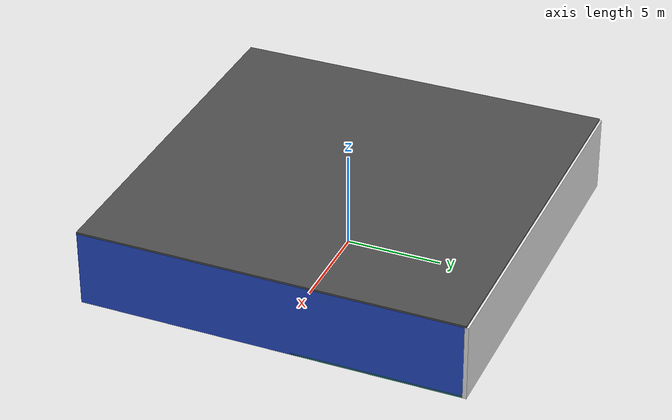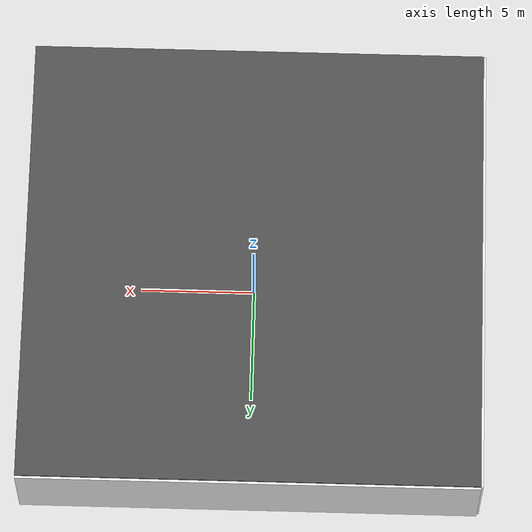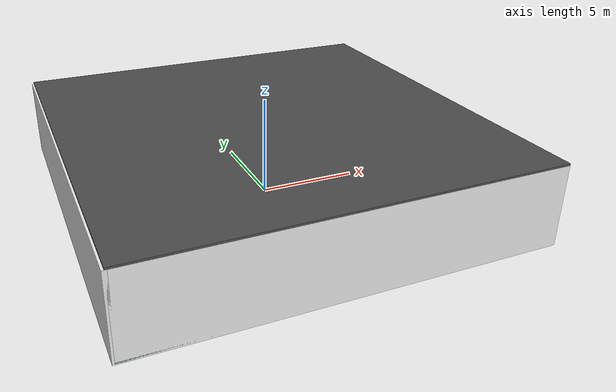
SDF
<sdf version="1.4">
 <world name="default">
  <physics type="ode">
   <max_step_size>0.001</max_step_size>
   <real_time_factor>1</real_time_factor>
   <real_time_update_rate>1000</real_time_update_rate>
   <gravity>0 0 -9.8</gravity>
  </physics>
  <scene><ambient>0.4 0.4 0.4 1</ambient><background>0.7 0.7 0.7 1</background><shadows>1</shadows></scene>
  <model name="Surrounding">
   <static>1</static>
   <link name="Ceiling">
    <collision name="Ceiling_Collision"><geometry><box><size>20 20 0.1</size></box></geometry></collision>
    <visual name="Ceiling_Visual">
     <geometry><box><size>20 20 0.1</size></box></geometry>
     <material>
      <script><uri>file://media/materials/scripts/gazebo.material</uri><name>Gazebo/Road</name></script>
     </material>
    </visual>
    <pose>0 0 4.05 0 0 0</pose>
   </link>
   <link name="Wall_South">
    <collision name="Wall_South_Collision">
     <geometry><box><size>20 0 4</size></box></geometry>
     <pose>0 0 2 0 -0 0</pose>
    </collision>
    <visual name="Wall_South_Visual">
     <pose>0 0 2 0 -0 0</pose>
     <geometry><box><size>20 0 4</size></box></geometry>
     <material>
      <script><uri>file://media/materials/scripts/gazebo.material</uri><name>Gazebo/White</name></script>
     </material>
    </visual>
    <velocity_decay><linear>0</linear><angular>0</angular></velocity_decay>
    <pose>0 -10 0 0 -0 0</pose>
   </link>
   <link name="Wall_East">
    <collision name="Wall_21_Collision">
     <geometry><box><size>20 0 4</size></box></geometry>
     <pose>0 0 2 0 -0 0</pose>
    </collision>
    <visual name="Wall_21_Visual">
     <pose>0 0 2 0 -0 0</pose>
     <geometry><box><size>20 0 4</size></box></geometry>
     <material>
      <script><uri>file://media/materials/scripts/gazebo.material</uri><name>Gazebo/Blue</name></script>
     </material>
    </visual>
    <velocity_decay><linear>0</linear><angular>0</angular></velocity_decay>
    <pose>10 0 0 0 -0 1.5708</pose>
   </link>
   <link name="Wall_North">
    <collision name="Wall_22_Collision">
     <geometry><box><size>20 0.2 4</size></box></geometry>
     <pose>0 0 2 0 -0 0</pose>
    </collision>
    <visual name="Wall_22_Visual">
     <pose>0 0 2 0 -0 0</pose>
     <geometry><box><size>20 0.2 4</size></box></geometry>
     <material>
      <script><uri>file://media/materials/scripts/gazebo.material</uri><name>Gazebo/WhiteGlow</name></script>
     </material>
    </visual>
    <velocity_decay><linear>0</linear><angular>0</angular></velocity_decay>
    <pose>0 10 0 0 -0 0</pose>
   </link>
   <link name="Wall_West">
    <collision name="Wall_23_Collision">
     <geometry><box><size>20 0.2 4</size></box></geometry>
     <pose>0 0 2 0 -0 0</pose>
    </collision>
    <visual name="Wall_23_Visual">
     <pose>0 0 2 0 -0 0</pose>
     <geometry><box><size>20 0.2 4</size></box></geometry>
     <material>
      <script><uri>file://media/materials/scripts/gazebo.material</uri><name>Gazebo/White</name></script>
     </material>
    </visual>
    <velocity_decay><linear>0</linear><angular>0</angular></velocity_decay>
    <pose>-10 0 0 0 0 -1.5708</pose>
   </link>
   <link name="Ground_link">
    <collision name="collision">
     <pose>0 0 .05 0 -0 0</pose>
     <geometry><box><size>20 20 0.1</size></box></geometry>
    </collision>
    <visual name="visual">
     <pose>0 0 .05 0 -0 0</pose>
     <geometry><box><size>20 20 0.1</size></box></geometry>
     <material>
      <script><uri>file://media/materials/scripts/gazebo.material</uri><name>Gazebo/GreenTransparent</name></script>
     </material>
    </visual>
   </link>
   <static>1</static>
  </model>
  <spherical_coordinates>
   <surface_model>EARTH_WGS84</surface_model>
   <latitude_deg>0</latitude_deg>
   <longitude_deg>0</longitude_deg>
   <elevation>0</elevation>
   <heading_deg>0</heading_deg>
  </spherical_coordinates>
  <light name="lightball_0" type="diffuse">
   <diffuse>0.8 0.8 0.8 1</diffuse>
   <specular>0.2 0.2 0.2 1</specular>
   <attenuation>
    <range>100</range>
    <constant>0.7</constant>
    <linear>0.01</linear>
    <quadratic>0.001</quadratic>
   </attenuation>
   <direction>-0.5 0.1 -0.9</direction>
   <pose>4.2041377994 8.0659298436 1.07820551715 0 0 0</pose>
  </light>
  <light name="lightball_1" type="diffuse">
   <diffuse>0.8 0.8 0.8 1</diffuse>
   <specular>0.2 0.2 0.2 1</specular>
   <attenuation>
    <range>100</range>
    <constant>0.7</constant>
    <linear>0.01</linear>
    <quadratic>0.001</quadratic>
   </attenuation>
   <direction>-0.5 0.1 -0.9</direction>
   <pose>-8.28143373259 -8.49514301339 1.17248916461 0 0 0</pose>
  </light>
  <light name="lightball_2" type="diffuse">
   <diffuse>0.8 0.8 0.8 1</diffuse>
   <specular>0.2 0.2 0.2 1</specular>
   <attenuation>
    <range>100</range>
    <constant>0.7</constant>
    <linear>0.01</linear>
    <quadratic>0.001</quadratic>
   </attenuation>
   <direction>-0.5 0.1 -0.9</direction>
   <pose>8.10533099811 4.30685950702 2.2699309853 0 0 0</pose>
  </light>
  <light name="lightball_3" type="diffuse">
   <diffuse>0.8 0.8 0.8 1</diffuse>
   <specular>0.2 0.2 0.2 1</specular>
   <attenuation>
    <range>100</range>
    <constant>0.7</constant>
    <linear>0.01</linear>
    <quadratic>0.001</quadratic>
   </attenuation>
   <direction>-0.5 0.1 -0.9</direction>
   <pose>-5.27439571129 -2.40668312375 3.61891749074 0 0 0</pose>
  </light>
  <light name="lightball_4" type="diffuse">
   <diffuse>0.8 0.8 0.8 1</diffuse>
   <specular>0.2 0.2 0.2 1</specular>
   <attenuation>
    <range>100</range>
    <constant>0.7</constant>
    <linear>0.01</linear>
    <quadratic>0.001</quadratic>
   </attenuation>
   <direction>-0.5 0.1 -0.9</direction>
   <pose>-5.78778606766 6.34246669534 1.019643169 0 0 0</pose>
  </light>
  <light name="lightball_5" type="diffuse">
   <diffuse>0.8 0.8 0.8 1</diffuse>
   <specular>0.2 0.2 0.2 1</specular>
   <attenuation>
    <range>100</range>
    <constant>0.7</constant>
    <linear>0.01</linear>
    <quadratic>0.001</quadratic>
   </attenuation>
   <direction>-0.5 0.1 -0.9</direction>
   <pose>-6.56729291698 -5.78306735136 3.61728964621 0 0 0</pose>
  </light>
  <light name="lightball_6" type="diffuse">
   <diffuse>0.8 0.8 0.8 1</diffuse>
   <specular>0.2 0.2 0.2 1</specular>
   <attenuation>
    <range>100</range>
    <constant>0.7</constant>
    <linear>0.01</linear>
    <quadratic>0.001</quadratic>
   </attenuation>
   <direction>-0.5 0.1 -0.9</direction>
   <pose>-8.38614427042 2.9272970268 2.68091779104 0 0 0</pose>
  </light>
  <include>
   <uri>model://textured_shapes</uri>
   <pose>-5.65242549037 -0.469069588394 0 0 0 2.52568221051</pose>
  </include>
  <include><uri>model://cabinet</uri><pose>-2.54262894558 7.69822385143 0 0 0 2.9319179962</pose></include>
  <include>
   <uri>model://construction_cone</uri>
   <pose>5.16723727339 -0.315029953247 0 0 0 1.70024826487</pose>
  </include>
  <include>
   <uri>model://construction_cone</uri>
   <pose>3.72527881872 6.35176740797 0 0 0 1.65493847616</pose>
  </include>
  <include>
   <uri>model://construction_cone</uri>
   <pose>8.37707416721 2.17600050063 0 0 0 2.34464887121</pose>
  </include>
 </world>
</sdf>

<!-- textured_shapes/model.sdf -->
<sdf version="1.6">
  <model name="textured_shapes">
    <pose>0 0 0.5 0 0 0</pose>
    <link name="box">
      <pose>0 -1.5 0 0 0 0</pose>
      <collision name="collision">
        <geometry>
          <box>
            <size>1 1 1</size>
          </box>
        </geometry>
      </collision>
      <visual name="visual">
        <geometry>
          <box>
            <size>1 1 1</size>
          </box>
        </geometry>
        <material>
          <script>
            <uri>model://../model_source/models/textured_shapes/materials/scripts</uri>
            <uri>model://../model_source/models/textured_shapes/materials/textures</uri>
            <name>TexturedShape/Squares</name>
          </script>
        </material>
      </visual>
    </link>
    <link name="sphere">
      <collision name="collision">
        <geometry>
          <sphere>
            <radius>0.5</radius>
          </sphere>
        </geometry>
      </collision>
      <visual name="visual">
        <geometry>
          <sphere>
            <radius>0.5</radius>
          </sphere>
        </geometry>
        <material>
          <script>
            <uri>model://../model_source/models/textured_shapes/materials/scripts</uri>
            <uri>model://../model_source/models/textured_shapes/materials/textures</uri>
            <name>TexturedShape/Squares</name>
          </script>
        </material>
      </visual>
    </link>
    <link name="cylinder">
      <pose>0 1.5 0 0 0 0</pose>
      <collision name="collision">
        <geometry>
          <cylinder>
            <radius>0.5</radius>
            <length>1</length>
          </cylinder>
        </geometry>
      </collision>
      <visual name="visual">
        <geometry>
          <cylinder>
            <radius>0.5</radius>
            <length>1</length>
          </cylinder>
        </geometry>
        <material>
          <script>
            <uri>model://../model_source/models/textured_shapes/materials/scripts</uri>
            <uri>model://../model_source/models/textured_shapes/materials/textures</uri>
            <name>TexturedShape/Squares</name>
          </script>
        </material>
      </visual>
    </link>
  </model>
</sdf>

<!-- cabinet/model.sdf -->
<sdf version="1.5">
  <model name="cabinet">
    <static>true</static>
    <link name="cabinet_bottom_plate">
      <inertial>
        <pose>0 0 -1 0 0 0</pose>
        <inertia>
          <ixx>2.050000</ixx>
          <ixy>0</ixy>
          <ixz>0</ixz>
          <iyy>2.050000</iyy>
          <iyz>0</iyz>
          <izz>2.050000</izz>
        </inertia>
        <mass>25.000000</mass>
      </inertial>
      <collision name="cabinet_bottom_plate_geom">
        <pose>0 0 0.010000 0 0 0</pose>
        <geometry>
          <box>
            <size>0.450000 0.450000 0.020000</size>
          </box>
        </geometry>
      </collision>
      <visual name="cabinet_bottom_plate_geom_visual">
        <pose>0 0 0.010000 0 0 0</pose>
        <geometry>
          <box>
            <size>0.450000 0.450000 0.020000</size>
          </box>
        </geometry>
        <material>
          <script>
            <uri>model://media/materials/scripts/gazebo.material</uri>
            <name>Gazebo/Wood</name>
          </script>
        </material>
      </visual>
      <collision name="cabinet_bottom_plate_geom_cabinet_back_plate">
        <pose>0.235000 0 0.510000 0 0 0</pose>
        <geometry>
          <box>
            <size>0.020000 0.450000 1.020000</size>
          </box>
        </geometry>
      </collision>
      <visual name="cabinet_bottom_plate_geom_cabinet_back_plate_visual">
        <pose>0.235000 0 0.510000 0 0 0</pose>
        <geometry>
          <box>
            <size>0.020000 0.450000 1.020000</size>
          </box>
        </geometry>
        <material>
          <script>
            <uri>model://media/materials/scripts/gazebo.material</uri>
            <name>Gazebo/Wood</name>
          </script>
        </material>
      </visual>
      <collision name="cabinet_bottom_plate_geom_cabinet_left_plate">
        <pose>0 0.235000 0.510000 0 0 0</pose>
        <geometry>
          <box>
            <size>0.450000 0.020000 1.020000</size>
          </box>
        </geometry>
      </collision>
      <visual name="cabinet_bottom_plate_geom_cabinet_left_plate_visual">
        <pose>0 0.235000 0.510000 0 0 0</pose>
        <geometry>
          <box>
            <size>0.450000 0.020000 1.020000</size>
          </box>
        </geometry>
        <material>
          <script>
            <uri>model://media/materials/scripts/gazebo.material</uri>
            <name>Gazebo/Wood</name>
          </script>
        </material>
      </visual>
      <collision name="cabinet_bottom_plate_geom_cabinet_middle_plate">
        <pose>0 0 0.510000 0 0 0</pose>
        <geometry>
          <box>
            <size>0.450000 0.450000 0.020000</size>
          </box>
        </geometry>
      </collision>
      <visual name="cabinet_bottom_plate_geom_cabinet_middle_plate_visual">
        <pose>0 0 0.510000 0 0 0</pose>
        <geometry>
          <box>
            <size>0.450000 0.450000 0.020000</size>
          </box>
        </geometry>
        <material>
          <script>
            <uri>model://media/materials/scripts/gazebo.material</uri>
            <name>Gazebo/Wood</name>
          </script>
        </material>
      </visual>
      <collision name="cabinet_bottom_plate_geom_cabinet_right_plate">
        <pose>0 -0.235000 0.510000 0 0 0</pose>
        <geometry>
          <box>
            <size>0.450000 0.020000 1.020000</size>
          </box>
        </geometry>
      </collision>
      <visual name="cabinet_bottom_plate_geom_cabinet_right_plate_visual">
        <pose>0 -0.235000 0.510000 0 0 0</pose>
        <geometry>
          <box>
            <size>0.450000 0.020000 1.020000</size>
          </box>
        </geometry>
        <material>
          <script>
            <uri>model://media/materials/scripts/gazebo.material</uri>
            <name>Gazebo/Wood</name>
          </script>
        </material>
      </visual>
      <collision name="cabinet_bottom_plate_geom_cabinet_top_plate">
        <pose>0 0 1.010000 0 0 0</pose>
        <geometry>
          <box>
            <size>0.450000 0.450000 0.020000</size>
          </box>
        </geometry>
      </collision>
      <visual name="cabinet_bottom_plate_geom_cabinet_top_plate_visual">
        <pose>0 0 1.010000 0 0 0</pose>
        <geometry>
          <box>
            <size>0.450000 0.450000 0.020000</size>
          </box>
        </geometry>
        <material>
          <script>
            <uri>model://media/materials/scripts/gazebo.material</uri>
            <name>Gazebo/Wood</name>
          </script>
        </material>
      </visual>
    </link>
  </model>
</sdf>

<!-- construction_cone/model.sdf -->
<sdf version="1.5">
  <model name="Construction Cone">
    <link name="link">
      <collision name="collision">
        <geometry>
          <mesh>
            <scale>10 10 10</scale>
            <uri>file://isr-testbed/construction_cone/meshes/construction_cone.dae</uri>
          </mesh>
        </geometry>
      </collision>
      <visual name="visual">
        <geometry>
          <mesh>
            <scale>10 10 10</scale>
            <uri>file://isr-testbed/construction_cone/meshes/construction_cone.dae</uri>
          </mesh>
        </geometry>
      </visual>
    </link>
  </model>
</sdf>
